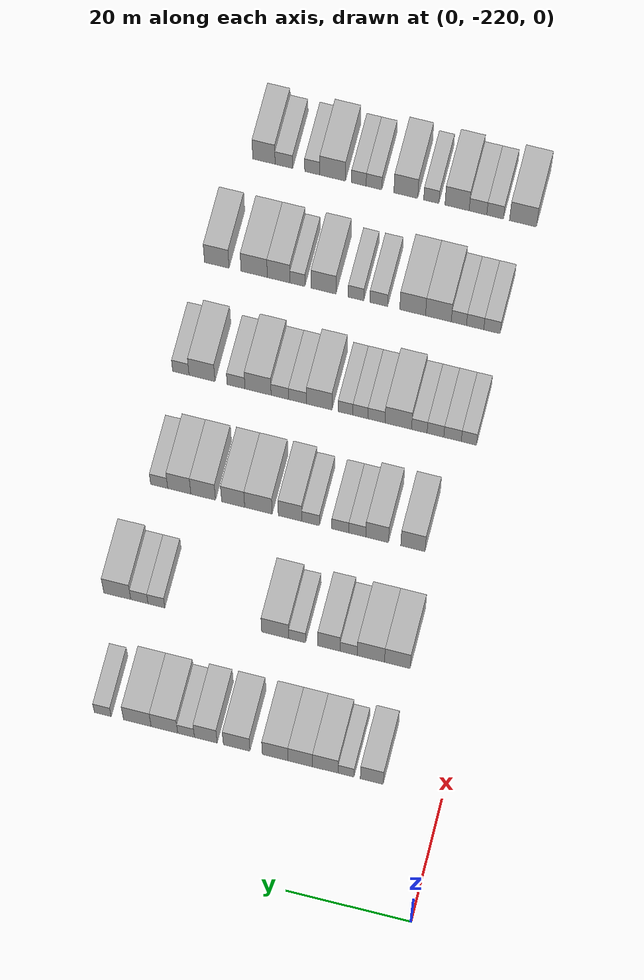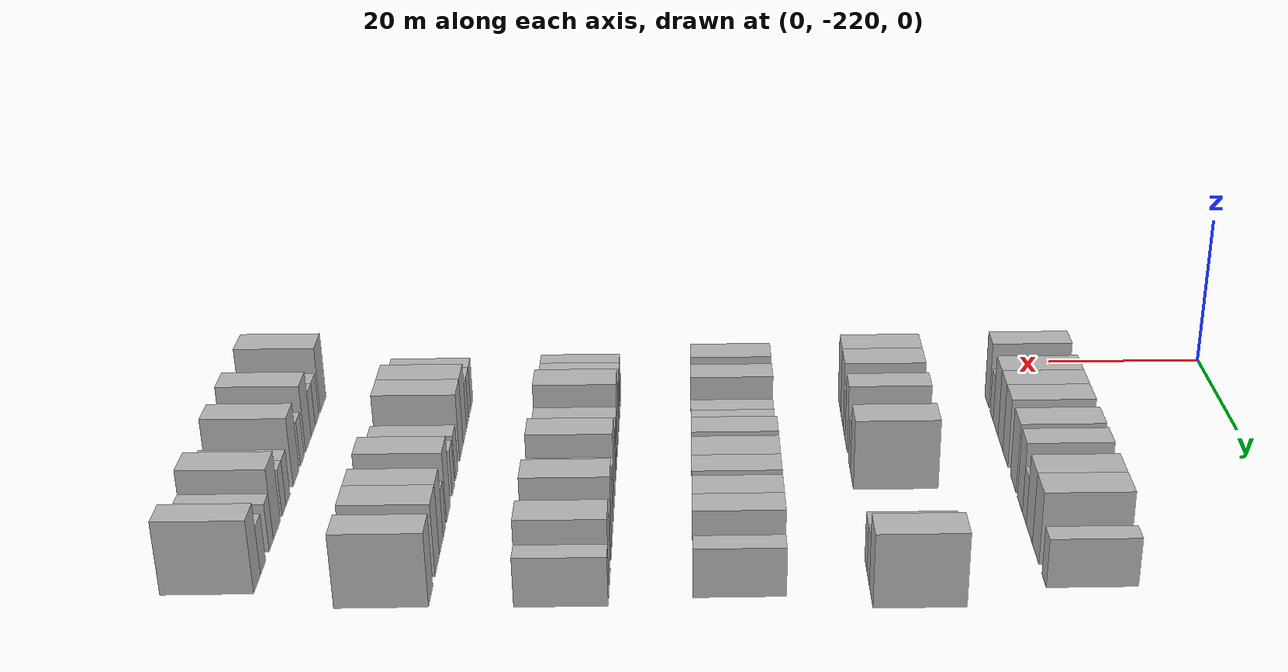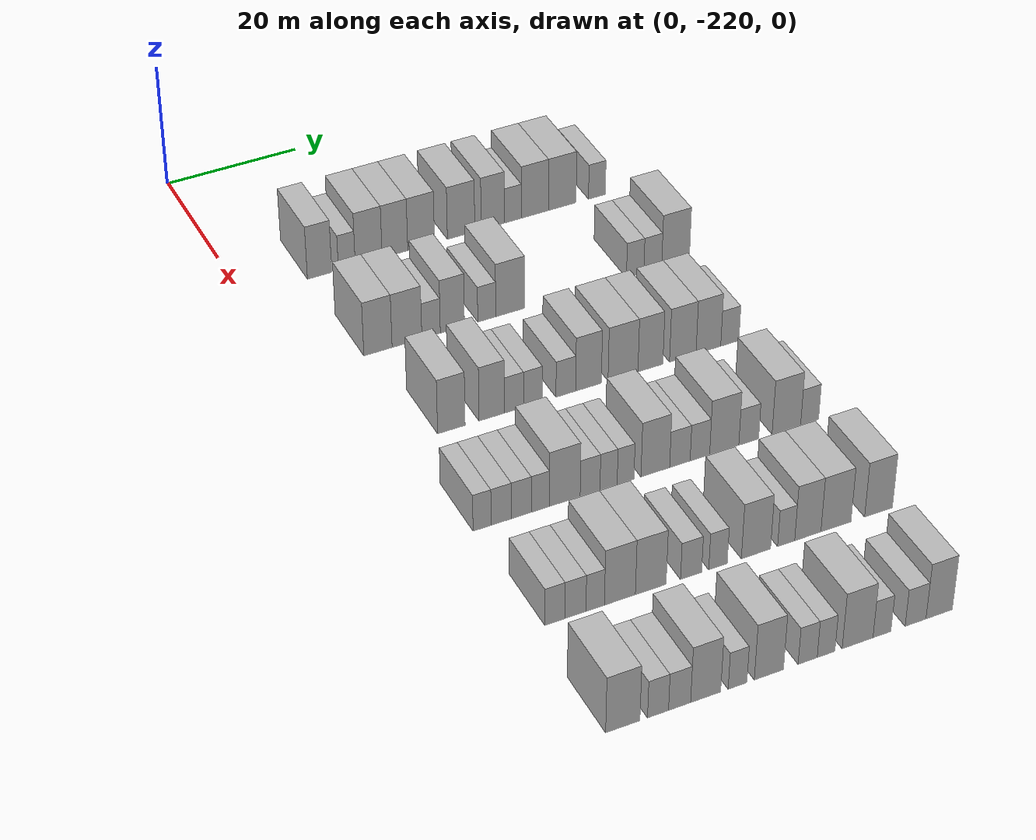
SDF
<sdf version="1.6">
 <world name="default">
  <model name="building_40">
   <static>1</static>
   <pose>25.0000 -208.6132 0 0.000000 0.000000 0.000000</pose>
   <link name="link">
    <pose>0 0 4.50 0 0 0</pose>
    <collision name="collision"><geometry><box><size>10.0000 3.6755 9.0000</size></box></geometry></collision>
    <visual name="visual">
     <cast_shadows>0</cast_shadows>
     <geometry><box><size>10.0000 3.6755 9.0000</size></box></geometry>
     <material>
      <script>
       <uri>model://HANNAS_wall/materials/scripts</uri>
       <uri>model://HANNAS_wall/materials/textures</uri>
       <name>vrc/HANNAS_wall</name>
      </script>
     </material>
    </visual>
   </link>
  </model>
  <model name="building_41">
   <static>1</static>
   <pose>25.0000 -204.4969 0 0.000000 0.000000 0.000000</pose>
   <link name="link">
    <pose>0 0 3.00 0 0 0</pose>
    <collision name="collision"><geometry><box><size>10.0000 2.5571 6.0000</size></box></geometry></collision>
    <visual name="visual">
     <cast_shadows>0</cast_shadows>
     <geometry><box><size>10.0000 2.5571 6.0000</size></box></geometry>
     <material>
      <script>
       <uri>model://HANNAS_wall/materials/scripts</uri>
       <uri>model://HANNAS_wall/materials/textures</uri>
       <name>vrc/HANNAS_wall</name>
      </script>
     </material>
    </visual>
   </link>
  </model>
  <model name="building_42">
   <static>1</static>
   <pose>25.0000 -201.1637 0 0.000000 0.000000 0.000000</pose>
   <link name="link">
    <pose>0 0 4.50 0 0 0</pose>
    <collision name="collision"><geometry><box><size>10.0000 4.1092 9.0000</size></box></geometry></collision>
    <visual name="visual">
     <cast_shadows>0</cast_shadows>
     <geometry><box><size>10.0000 4.1092 9.0000</size></box></geometry>
     <material>
      <script>
       <uri>model://HANNAS_wall/materials/scripts</uri>
       <uri>model://HANNAS_wall/materials/textures</uri>
       <name>vrc/HANNAS_wall</name>
      </script>
     </material>
    </visual>
   </link>
  </model>
  <model name="building_43">
   <static>1</static>
   <pose>25.0000 -197.1431 0 0.000000 0.000000 0.000000</pose>
   <link name="link">
    <pose>0 0 4.50 0 0 0</pose>
    <collision name="collision"><geometry><box><size>10.0000 3.9319 9.0000</size></box></geometry></collision>
    <visual name="visual">
     <cast_shadows>0</cast_shadows>
     <geometry><box><size>10.0000 3.9319 9.0000</size></box></geometry>
     <material>
      <script>
       <uri>model://HANNAS_wall/materials/scripts</uri>
       <uri>model://HANNAS_wall/materials/textures</uri>
       <name>vrc/HANNAS_wall</name>
      </script>
     </material>
    </visual>
   </link>
  </model>
  <model name="building_44">
   <static>1</static>
   <pose>25.0000 -193.1089 0 0.000000 0.000000 0.000000</pose>
   <link name="link">
    <pose>0 0 4.50 0 0 0</pose>
    <collision name="collision"><geometry><box><size>10.0000 4.1365 9.0000</size></box></geometry></collision>
    <visual name="visual">
     <cast_shadows>0</cast_shadows>
     <geometry><box><size>10.0000 4.1365 9.0000</size></box></geometry>
     <material>
      <script>
       <uri>model://HANNAS_wall/materials/scripts</uri>
       <uri>model://HANNAS_wall/materials/textures</uri>
       <name>vrc/HANNAS_wall</name>
      </script>
     </material>
    </visual>
   </link>
  </model>
  <model name="building_45">
   <static>1</static>
   <pose>25.0000 -186.9005 0 0.000000 0.000000 0.000000</pose>
   <link name="link">
    <pose>0 0 4.50 0 0 0</pose>
    <collision name="collision"><geometry><box><size>10.0000 4.2803 9.0000</size></box></geometry></collision>
    <visual name="visual">
     <cast_shadows>0</cast_shadows>
     <geometry><box><size>10.0000 4.2803 9.0000</size></box></geometry>
     <material>
      <script>
       <uri>model://HANNAS_wall/materials/scripts</uri>
       <uri>model://HANNAS_wall/materials/textures</uri>
       <name>vrc/HANNAS_wall</name>
      </script>
     </material>
    </visual>
   </link>
  </model>
  <model name="building_46">
   <static>1</static>
   <pose>25.0000 -181.9274 0 0.000000 0.000000 0.000000</pose>
   <link name="link">
    <pose>0 0 4.50 0 0 0</pose>
    <collision name="collision"><geometry><box><size>10.0000 3.6659 9.0000</size></box></geometry></collision>
    <visual name="visual">
     <cast_shadows>0</cast_shadows>
     <geometry><box><size>10.0000 3.6659 9.0000</size></box></geometry>
     <material>
      <script>
       <uri>model://HANNAS_wall/materials/scripts</uri>
       <uri>model://HANNAS_wall/materials/textures</uri>
       <name>vrc/HANNAS_wall</name>
      </script>
     </material>
    </visual>
   </link>
  </model>
  <model name="building_47">
   <static>1</static>
   <pose>25.0000 -178.7466 0 0.000000 0.000000 0.000000</pose>
   <link name="link">
    <pose>0 0 3.00 0 0 0</pose>
    <collision name="collision"><geometry><box><size>10.0000 2.6958 6.0000</size></box></geometry></collision>
    <visual name="visual">
     <cast_shadows>0</cast_shadows>
     <geometry><box><size>10.0000 2.6958 6.0000</size></box></geometry>
     <material>
      <script>
       <uri>model://HANNAS_wall/materials/scripts</uri>
       <uri>model://HANNAS_wall/materials/textures</uri>
       <name>vrc/HANNAS_wall</name>
      </script>
     </material>
    </visual>
   </link>
  </model>
  <model name="building_48">
   <static>1</static>
   <pose>25.0000 -175.2528 0 0.000000 0.000000 0.000000</pose>
   <link name="link">
    <pose>0 0 4.50 0 0 0</pose>
    <collision name="collision"><geometry><box><size>10.0000 4.2917 9.0000</size></box></geometry></collision>
    <visual name="visual">
     <cast_shadows>0</cast_shadows>
     <geometry><box><size>10.0000 4.2917 9.0000</size></box></geometry>
     <material>
      <script>
       <uri>model://HANNAS_wall/materials/scripts</uri>
       <uri>model://HANNAS_wall/materials/textures</uri>
       <name>vrc/HANNAS_wall</name>
      </script>
     </material>
    </visual>
   </link>
  </model>
  <model name="building_49">
   <static>1</static>
   <pose>25.0000 -170.8839 0 0.000000 0.000000 0.000000</pose>
   <link name="link">
    <pose>0 0 4.50 0 0 0</pose>
    <collision name="collision"><geometry><box><size>10.0000 4.4460 9.0000</size></box></geometry></collision>
    <visual name="visual">
     <cast_shadows>0</cast_shadows>
     <geometry><box><size>10.0000 4.4460 9.0000</size></box></geometry>
     <material>
      <script>
       <uri>model://HANNAS_wall/materials/scripts</uri>
       <uri>model://HANNAS_wall/materials/textures</uri>
       <name>vrc/HANNAS_wall</name>
      </script>
     </material>
    </visual>
   </link>
  </model>
  <model name="building_50">
   <static>1</static>
   <pose>25.0000 -165.2968 0 0.000000 0.000000 0.000000</pose>
   <link name="link">
    <pose>0 0 3.00 0 0 0</pose>
    <collision name="collision"><geometry><box><size>10.0000 2.7283 6.0000</size></box></geometry></collision>
    <visual name="visual">
     <cast_shadows>0</cast_shadows>
     <geometry><box><size>10.0000 2.7283 6.0000</size></box></geometry>
     <material>
      <script>
       <uri>model://HANNAS_wall/materials/scripts</uri>
       <uri>model://HANNAS_wall/materials/textures</uri>
       <name>vrc/HANNAS_wall</name>
      </script>
     </material>
    </visual>
   </link>
  </model>
  <model name="building_210">
   <static>1</static>
   <pose>44.0000 -207.9708 0 0.000000 0.000000 0.000000</pose>
   <link name="link">
    <pose>0 0 4.50 0 0 0</pose>
    <collision name="collision"><geometry><box><size>10.0000 4.1516 9.0000</size></box></geometry></collision>
    <visual name="visual">
     <cast_shadows>0</cast_shadows>
     <geometry><box><size>10.0000 4.1516 9.0000</size></box></geometry>
     <material>
      <script>
       <uri>model://HANNAS_wall/materials/scripts</uri>
       <uri>model://HANNAS_wall/materials/textures</uri>
       <name>vrc/HANNAS_wall</name>
      </script>
     </material>
    </visual>
   </link>
  </model>
  <model name="building_211">
   <static>1</static>
   <pose>44.0000 -203.6932 0 0.000000 0.000000 0.000000</pose>
   <link name="link">
    <pose>0 0 4.50 0 0 0</pose>
    <collision name="collision"><geometry><box><size>10.0000 4.4034 9.0000</size></box></geometry></collision>
    <visual name="visual">
     <cast_shadows>0</cast_shadows>
     <geometry><box><size>10.0000 4.4034 9.0000</size></box></geometry>
     <material>
      <script>
       <uri>model://HANNAS_wall/materials/scripts</uri>
       <uri>model://HANNAS_wall/materials/textures</uri>
       <name>vrc/HANNAS_wall</name>
      </script>
     </material>
    </visual>
   </link>
  </model>
  <model name="building_212">
   <static>1</static>
   <pose>44.0000 -200.1159 0 0.000000 0.000000 0.000000</pose>
   <link name="link">
    <pose>0 0 3.00 0 0 0</pose>
    <collision name="collision"><geometry><box><size>10.0000 2.7513 6.0000</size></box></geometry></collision>
    <visual name="visual">
     <cast_shadows>0</cast_shadows>
     <geometry><box><size>10.0000 2.7513 6.0000</size></box></geometry>
     <material>
      <script>
       <uri>model://HANNAS_wall/materials/scripts</uri>
       <uri>model://HANNAS_wall/materials/textures</uri>
       <name>vrc/HANNAS_wall</name>
      </script>
     </material>
    </visual>
   </link>
  </model>
  <model name="building_213">
   <static>1</static>
   <pose>44.0000 -196.9334 0 0.000000 0.000000 0.000000</pose>
   <link name="link">
    <pose>0 0 4.50 0 0 0</pose>
    <collision name="collision"><geometry><box><size>10.0000 3.6137 9.0000</size></box></geometry></collision>
    <visual name="visual">
     <cast_shadows>0</cast_shadows>
     <geometry><box><size>10.0000 3.6137 9.0000</size></box></geometry>
     <material>
      <script>
       <uri>model://HANNAS_wall/materials/scripts</uri>
       <uri>model://HANNAS_wall/materials/textures</uri>
       <name>vrc/HANNAS_wall</name>
      </script>
     </material>
    </visual>
   </link>
  </model>
  <model name="building_214">
   <static>1</static>
   <pose>44.0000 -191.7709 0 0.000000 0.000000 0.000000</pose>
   <link name="link">
    <pose>0 0 3.00 0 0 0</pose>
    <collision name="collision"><geometry><box><size>10.0000 2.7115 6.0000</size></box></geometry></collision>
    <visual name="visual">
     <cast_shadows>0</cast_shadows>
     <geometry><box><size>10.0000 2.7115 6.0000</size></box></geometry>
     <material>
      <script>
       <uri>model://HANNAS_wall/materials/scripts</uri>
       <uri>model://HANNAS_wall/materials/textures</uri>
       <name>vrc/HANNAS_wall</name>
      </script>
     </material>
    </visual>
   </link>
  </model>
  <model name="building_215">
   <static>1</static>
   <pose>44.0000 -188.2164 0 0.000000 0.000000 0.000000</pose>
   <link name="link">
    <pose>0 0 4.50 0 0 0</pose>
    <collision name="collision"><geometry><box><size>10.0000 4.3975 9.0000</size></box></geometry></collision>
    <visual name="visual">
     <cast_shadows>0</cast_shadows>
     <geometry><box><size>10.0000 4.3975 9.0000</size></box></geometry>
     <material>
      <script>
       <uri>model://HANNAS_wall/materials/scripts</uri>
       <uri>model://HANNAS_wall/materials/textures</uri>
       <name>vrc/HANNAS_wall</name>
      </script>
     </material>
    </visual>
   </link>
  </model>
  <model name="building_216">
   <static>1</static>
   <pose>44.0000 -168.9164 0 0.000000 0.000000 0.000000</pose>
   <link name="link">
    <pose>0 0 3.00 0 0 0</pose>
    <collision name="collision"><geometry><box><size>10.0000 2.7342 6.0000</size></box></geometry></collision>
    <visual name="visual">
     <cast_shadows>0</cast_shadows>
     <geometry><box><size>10.0000 2.7342 6.0000</size></box></geometry>
     <material>
      <script>
       <uri>model://HANNAS_wall/materials/scripts</uri>
       <uri>model://HANNAS_wall/materials/textures</uri>
       <name>vrc/HANNAS_wall</name>
      </script>
     </material>
    </visual>
   </link>
  </model>
  <model name="building_217">
   <static>1</static>
   <pose>44.0000 -166.1420 0 0.000000 0.000000 0.000000</pose>
   <link name="link">
    <pose>0 0 3.00 0 0 0</pose>
    <collision name="collision"><geometry><box><size>10.0000 2.8147 6.0000</size></box></geometry></collision>
    <visual name="visual">
     <cast_shadows>0</cast_shadows>
     <geometry><box><size>10.0000 2.8147 6.0000</size></box></geometry>
     <material>
      <script>
       <uri>model://HANNAS_wall/materials/scripts</uri>
       <uri>model://HANNAS_wall/materials/textures</uri>
       <name>vrc/HANNAS_wall</name>
      </script>
     </material>
    </visual>
   </link>
  </model>
  <model name="building_218">
   <static>1</static>
   <pose>44.0000 -162.5409 0 0.000000 0.000000 0.000000</pose>
   <link name="link">
    <pose>0 0 4.50 0 0 0</pose>
    <collision name="collision"><geometry><box><size>10.0000 4.3874 9.0000</size></box></geometry></collision>
    <visual name="visual">
     <cast_shadows>0</cast_shadows>
     <geometry><box><size>10.0000 4.3874 9.0000</size></box></geometry>
     <material>
      <script>
       <uri>model://HANNAS_wall/materials/scripts</uri>
       <uri>model://HANNAS_wall/materials/textures</uri>
       <name>vrc/HANNAS_wall</name>
      </script>
     </material>
    </visual>
   </link>
  </model>
  <model name="building_383">
   <static>1</static>
   <pose>63.0000 -205.7599 0 0.000000 0.000000 0.000000</pose>
   <link name="link">
    <pose>0 0 4.50 0 0 0</pose>
    <collision name="collision"><geometry><box><size>10.0000 3.9495 9.0000</size></box></geometry></collision>
    <visual name="visual">
     <cast_shadows>0</cast_shadows>
     <geometry><box><size>10.0000 3.9495 9.0000</size></box></geometry>
     <material>
      <script>
       <uri>model://HANNAS_wall/materials/scripts</uri>
       <uri>model://HANNAS_wall/materials/textures</uri>
       <name>vrc/HANNAS_wall</name>
      </script>
     </material>
    </visual>
   </link>
  </model>
  <model name="building_384">
   <static>1</static>
   <pose>63.0000 -199.9432 0 0.000000 0.000000 0.000000</pose>
   <link name="link">
    <pose>0 0 4.50 0 0 0</pose>
    <collision name="collision"><geometry><box><size>10.0000 3.6839 9.0000</size></box></geometry></collision>
    <visual name="visual">
     <cast_shadows>0</cast_shadows>
     <geometry><box><size>10.0000 3.6839 9.0000</size></box></geometry>
     <material>
      <script>
       <uri>model://HANNAS_wall/materials/scripts</uri>
       <uri>model://HANNAS_wall/materials/textures</uri>
       <name>vrc/HANNAS_wall</name>
      </script>
     </material>
    </visual>
   </link>
  </model>
  <model name="building_385">
   <static>1</static>
   <pose>63.0000 -196.7070 0 0.000000 0.000000 0.000000</pose>
   <link name="link">
    <pose>0 0 3.00 0 0 0</pose>
    <collision name="collision"><geometry><box><size>10.0000 2.7885 6.0000</size></box></geometry></collision>
    <visual name="visual">
     <cast_shadows>0</cast_shadows>
     <geometry><box><size>10.0000 2.7885 6.0000</size></box></geometry>
     <material>
      <script>
       <uri>model://HANNAS_wall/materials/scripts</uri>
       <uri>model://HANNAS_wall/materials/textures</uri>
       <name>vrc/HANNAS_wall</name>
      </script>
     </material>
    </visual>
   </link>
  </model>
  <model name="building_386">
   <static>1</static>
   <pose>63.0000 -193.9318 0 0.000000 0.000000 0.000000</pose>
   <link name="link">
    <pose>0 0 3.00 0 0 0</pose>
    <collision name="collision"><geometry><box><size>10.0000 2.7618 6.0000</size></box></geometry></collision>
    <visual name="visual">
     <cast_shadows>0</cast_shadows>
     <geometry><box><size>10.0000 2.7618 6.0000</size></box></geometry>
     <material>
      <script>
       <uri>model://HANNAS_wall/materials/scripts</uri>
       <uri>model://HANNAS_wall/materials/textures</uri>
       <name>vrc/HANNAS_wall</name>
      </script>
     </material>
    </visual>
   </link>
  </model>
  <model name="building_387">
   <static>1</static>
   <pose>63.0000 -189.0959 0 0.000000 0.000000 0.000000</pose>
   <link name="link">
    <pose>0 0 3.00 0 0 0</pose>
    <collision name="collision"><geometry><box><size>10.0000 2.9101 6.0000</size></box></geometry></collision>
    <visual name="visual">
     <cast_shadows>0</cast_shadows>
     <geometry><box><size>10.0000 2.9101 6.0000</size></box></geometry>
     <material>
      <script>
       <uri>model://HANNAS_wall/materials/scripts</uri>
       <uri>model://HANNAS_wall/materials/textures</uri>
       <name>vrc/HANNAS_wall</name>
      </script>
     </material>
    </visual>
   </link>
  </model>
  <model name="building_388">
   <static>1</static>
   <pose>63.0000 -185.7295 0 0.000000 0.000000 0.000000</pose>
   <link name="link">
    <pose>0 0 4.50 0 0 0</pose>
    <collision name="collision"><geometry><box><size>10.0000 3.8228 9.0000</size></box></geometry></collision>
    <visual name="visual">
     <cast_shadows>0</cast_shadows>
     <geometry><box><size>10.0000 3.8228 9.0000</size></box></geometry>
     <material>
      <script>
       <uri>model://HANNAS_wall/materials/scripts</uri>
       <uri>model://HANNAS_wall/materials/textures</uri>
       <name>vrc/HANNAS_wall</name>
      </script>
     </material>
    </visual>
   </link>
  </model>
  <model name="building_389">
   <static>1</static>
   <pose>63.0000 -180.5730 0 0.000000 0.000000 0.000000</pose>
   <link name="link">
    <pose>0 0 4.50 0 0 0</pose>
    <collision name="collision"><geometry><box><size>10.0000 4.4902 9.0000</size></box></geometry></collision>
    <visual name="visual">
     <cast_shadows>0</cast_shadows>
     <geometry><box><size>10.0000 4.4902 9.0000</size></box></geometry>
     <material>
      <script>
       <uri>model://HANNAS_wall/materials/scripts</uri>
       <uri>model://HANNAS_wall/materials/textures</uri>
       <name>vrc/HANNAS_wall</name>
      </script>
     </material>
    </visual>
   </link>
  </model>
  <model name="building_390">
   <static>1</static>
   <pose>63.0000 -176.4427 0 0.000000 0.000000 0.000000</pose>
   <link name="link">
    <pose>0 0 4.50 0 0 0</pose>
    <collision name="collision"><geometry><box><size>10.0000 3.7705 9.0000</size></box></geometry></collision>
    <visual name="visual">
     <cast_shadows>0</cast_shadows>
     <geometry><box><size>10.0000 3.7705 9.0000</size></box></geometry>
     <material>
      <script>
       <uri>model://HANNAS_wall/materials/scripts</uri>
       <uri>model://HANNAS_wall/materials/textures</uri>
       <name>vrc/HANNAS_wall</name>
      </script>
     </material>
    </visual>
   </link>
  </model>
  <model name="building_391">
   <static>1</static>
   <pose>63.0000 -171.5343 0 0.000000 0.000000 0.000000</pose>
   <link name="link">
    <pose>0 0 4.50 0 0 0</pose>
    <collision name="collision"><geometry><box><size>10.0000 4.0462 9.0000</size></box></geometry></collision>
    <visual name="visual">
     <cast_shadows>0</cast_shadows>
     <geometry><box><size>10.0000 4.0462 9.0000</size></box></geometry>
     <material>
      <script>
       <uri>model://HANNAS_wall/materials/scripts</uri>
       <uri>model://HANNAS_wall/materials/textures</uri>
       <name>vrc/HANNAS_wall</name>
      </script>
     </material>
    </visual>
   </link>
  </model>
  <model name="building_392">
   <static>1</static>
   <pose>63.0000 -167.6149 0 0.000000 0.000000 0.000000</pose>
   <link name="link">
    <pose>0 0 4.50 0 0 0</pose>
    <collision name="collision"><geometry><box><size>10.0000 3.7926 9.0000</size></box></geometry></collision>
    <visual name="visual">
     <cast_shadows>0</cast_shadows>
     <geometry><box><size>10.0000 3.7926 9.0000</size></box></geometry>
     <material>
      <script>
       <uri>model://HANNAS_wall/materials/scripts</uri>
       <uri>model://HANNAS_wall/materials/textures</uri>
       <name>vrc/HANNAS_wall</name>
      </script>
     </material>
    </visual>
   </link>
  </model>
  <model name="building_393">
   <static>1</static>
   <pose>63.0000 -164.3172 0 0.000000 0.000000 0.000000</pose>
   <link name="link">
    <pose>0 0 3.00 0 0 0</pose>
    <collision name="collision"><geometry><box><size>10.0000 2.8028 6.0000</size></box></geometry></collision>
    <visual name="visual">
     <cast_shadows>0</cast_shadows>
     <geometry><box><size>10.0000 2.8028 6.0000</size></box></geometry>
     <material>
      <script>
       <uri>model://HANNAS_wall/materials/scripts</uri>
       <uri>model://HANNAS_wall/materials/textures</uri>
       <name>vrc/HANNAS_wall</name>
      </script>
     </material>
    </visual>
   </link>
  </model>
  <model name="building_565">
   <static>1</static>
   <pose>82.0000 -210.1985 0 0.000000 0.000000 0.000000</pose>
   <link name="link">
    <pose>0 0 3.00 0 0 0</pose>
    <collision name="collision"><geometry><box><size>10.0000 2.4964 6.0000</size></box></geometry></collision>
    <visual name="visual">
     <cast_shadows>0</cast_shadows>
     <geometry><box><size>10.0000 2.4964 6.0000</size></box></geometry>
     <material>
      <script>
       <uri>model://HANNAS_wall/materials/scripts</uri>
       <uri>model://HANNAS_wall/materials/textures</uri>
       <name>vrc/HANNAS_wall</name>
      </script>
     </material>
    </visual>
   </link>
  </model>
  <model name="building_566">
   <static>1</static>
   <pose>82.0000 -207.5237 0 0.000000 0.000000 0.000000</pose>
   <link name="link">
    <pose>0 0 3.00 0 0 0</pose>
    <collision name="collision"><geometry><box><size>10.0000 2.8531 6.0000</size></box></geometry></collision>
    <visual name="visual">
     <cast_shadows>0</cast_shadows>
     <geometry><box><size>10.0000 2.8531 6.0000</size></box></geometry>
     <material>
      <script>
       <uri>model://HANNAS_wall/materials/scripts</uri>
       <uri>model://HANNAS_wall/materials/textures</uri>
       <name>vrc/HANNAS_wall</name>
      </script>
     </material>
    </visual>
   </link>
  </model>
  <model name="building_567">
   <static>1</static>
   <pose>82.0000 -204.7233 0 0.000000 0.000000 0.000000</pose>
   <link name="link">
    <pose>0 0 3.00 0 0 0</pose>
    <collision name="collision"><geometry><box><size>10.0000 2.7477 6.0000</size></box></geometry></collision>
    <visual name="visual">
     <cast_shadows>0</cast_shadows>
     <geometry><box><size>10.0000 2.7477 6.0000</size></box></geometry>
     <material>
      <script>
       <uri>model://HANNAS_wall/materials/scripts</uri>
       <uri>model://HANNAS_wall/materials/textures</uri>
       <name>vrc/HANNAS_wall</name>
      </script>
     </material>
    </visual>
   </link>
  </model>
  <model name="building_568">
   <static>1</static>
   <pose>82.0000 -202.0794 0 0.000000 0.000000 0.000000</pose>
   <link name="link">
    <pose>0 0 3.00 0 0 0</pose>
    <collision name="collision"><geometry><box><size>10.0000 2.5401 6.0000</size></box></geometry></collision>
    <visual name="visual">
     <cast_shadows>0</cast_shadows>
     <geometry><box><size>10.0000 2.5401 6.0000</size></box></geometry>
     <material>
      <script>
       <uri>model://HANNAS_wall/materials/scripts</uri>
       <uri>model://HANNAS_wall/materials/textures</uri>
       <name>vrc/HANNAS_wall</name>
      </script>
     </material>
    </visual>
   </link>
  </model>
  <model name="building_569">
   <static>1</static>
   <pose>82.0000 -198.6300 0 0.000000 0.000000 0.000000</pose>
   <link name="link">
    <pose>0 0 4.50 0 0 0</pose>
    <collision name="collision"><geometry><box><size>10.0000 4.3587 9.0000</size></box></geometry></collision>
    <visual name="visual">
     <cast_shadows>0</cast_shadows>
     <geometry><box><size>10.0000 4.3587 9.0000</size></box></geometry>
     <material>
      <script>
       <uri>model://HANNAS_wall/materials/scripts</uri>
       <uri>model://HANNAS_wall/materials/textures</uri>
       <name>vrc/HANNAS_wall</name>
      </script>
     </material>
    </visual>
   </link>
  </model>
  <model name="building_570">
   <static>1</static>
   <pose>82.0000 -195.0383 0 0.000000 0.000000 0.000000</pose>
   <link name="link">
    <pose>0 0 3.00 0 0 0</pose>
    <collision name="collision"><geometry><box><size>10.0000 2.8247 6.0000</size></box></geometry></collision>
    <visual name="visual">
     <cast_shadows>0</cast_shadows>
     <geometry><box><size>10.0000 2.8247 6.0000</size></box></geometry>
     <material>
      <script>
       <uri>model://HANNAS_wall/materials/scripts</uri>
       <uri>model://HANNAS_wall/materials/textures</uri>
       <name>vrc/HANNAS_wall</name>
      </script>
     </material>
    </visual>
   </link>
  </model>
  <model name="building_571">
   <static>1</static>
   <pose>82.0000 -192.3997 0 0.000000 0.000000 0.000000</pose>
   <link name="link">
    <pose>0 0 3.00 0 0 0</pose>
    <collision name="collision"><geometry><box><size>10.0000 2.4526 6.0000</size></box></geometry></collision>
    <visual name="visual">
     <cast_shadows>0</cast_shadows>
     <geometry><box><size>10.0000 2.4526 6.0000</size></box></geometry>
     <material>
      <script>
       <uri>model://HANNAS_wall/materials/scripts</uri>
       <uri>model://HANNAS_wall/materials/textures</uri>
       <name>vrc/HANNAS_wall</name>
      </script>
     </material>
    </visual>
   </link>
  </model>
  <model name="building_572">
   <static>1</static>
   <pose>82.0000 -189.9623 0 0.000000 0.000000 0.000000</pose>
   <link name="link">
    <pose>0 0 3.00 0 0 0</pose>
    <collision name="collision"><geometry><box><size>10.0000 2.4221 6.0000</size></box></geometry></collision>
    <visual name="visual">
     <cast_shadows>0</cast_shadows>
     <geometry><box><size>10.0000 2.4221 6.0000</size></box></geometry>
     <material>
      <script>
       <uri>model://HANNAS_wall/materials/scripts</uri>
       <uri>model://HANNAS_wall/materials/textures</uri>
       <name>vrc/HANNAS_wall</name>
      </script>
     </material>
    </visual>
   </link>
  </model>
  <model name="building_573">
   <static>1</static>
   <pose>82.0000 -185.6718 0 0.000000 0.000000 0.000000</pose>
   <link name="link">
    <pose>0 0 4.50 0 0 0</pose>
    <collision name="collision"><geometry><box><size>10.0000 4.1590 9.0000</size></box></geometry></collision>
    <visual name="visual">
     <cast_shadows>0</cast_shadows>
     <geometry><box><size>10.0000 4.1590 9.0000</size></box></geometry>
     <material>
      <script>
       <uri>model://HANNAS_wall/materials/scripts</uri>
       <uri>model://HANNAS_wall/materials/textures</uri>
       <name>vrc/HANNAS_wall</name>
      </script>
     </material>
    </visual>
   </link>
  </model>
  <model name="building_574">
   <static>1</static>
   <pose>82.0000 -182.0992 0 0.000000 0.000000 0.000000</pose>
   <link name="link">
    <pose>0 0 3.00 0 0 0</pose>
    <collision name="collision"><geometry><box><size>10.0000 2.9862 6.0000</size></box></geometry></collision>
    <visual name="visual">
     <cast_shadows>0</cast_shadows>
     <geometry><box><size>10.0000 2.9862 6.0000</size></box></geometry>
     <material>
      <script>
       <uri>model://HANNAS_wall/materials/scripts</uri>
       <uri>model://HANNAS_wall/materials/textures</uri>
       <name>vrc/HANNAS_wall</name>
      </script>
     </material>
    </visual>
   </link>
  </model>
  <model name="building_575">
   <static>1</static>
   <pose>82.0000 -179.1759 0 0.000000 0.000000 0.000000</pose>
   <link name="link">
    <pose>0 0 3.00 0 0 0</pose>
    <collision name="collision"><geometry><box><size>10.0000 2.8604 6.0000</size></box></geometry></collision>
    <visual name="visual">
     <cast_shadows>0</cast_shadows>
     <geometry><box><size>10.0000 2.8604 6.0000</size></box></geometry>
     <material>
      <script>
       <uri>model://HANNAS_wall/materials/scripts</uri>
       <uri>model://HANNAS_wall/materials/textures</uri>
       <name>vrc/HANNAS_wall</name>
      </script>
     </material>
    </visual>
   </link>
  </model>
  <model name="building_576">
   <static>1</static>
   <pose>82.0000 -175.5945 0 0.000000 0.000000 0.000000</pose>
   <link name="link">
    <pose>0 0 4.50 0 0 0</pose>
    <collision name="collision"><geometry><box><size>10.0000 4.3023 9.0000</size></box></geometry></collision>
    <visual name="visual">
     <cast_shadows>0</cast_shadows>
     <geometry><box><size>10.0000 4.3023 9.0000</size></box></geometry>
     <material>
      <script>
       <uri>model://HANNAS_wall/materials/scripts</uri>
       <uri>model://HANNAS_wall/materials/textures</uri>
       <name>vrc/HANNAS_wall</name>
      </script>
     </material>
    </visual>
   </link>
  </model>
  <model name="building_577">
   <static>1</static>
   <pose>82.0000 -171.9695 0 0.000000 0.000000 0.000000</pose>
   <link name="link">
    <pose>0 0 3.00 0 0 0</pose>
    <collision name="collision"><geometry><box><size>10.0000 2.9477 6.0000</size></box></geometry></collision>
    <visual name="visual">
     <cast_shadows>0</cast_shadows>
     <geometry><box><size>10.0000 2.9477 6.0000</size></box></geometry>
     <material>
      <script>
       <uri>model://HANNAS_wall/materials/scripts</uri>
       <uri>model://HANNAS_wall/materials/textures</uri>
       <name>vrc/HANNAS_wall</name>
      </script>
     </material>
    </visual>
   </link>
  </model>
  <model name="building_578">
   <static>1</static>
   <pose>82.0000 -166.3547 0 0.000000 0.000000 0.000000</pose>
   <link name="link">
    <pose>0 0 4.50 0 0 0</pose>
    <collision name="collision"><geometry><box><size>10.0000 4.2818 9.0000</size></box></geometry></collision>
    <visual name="visual">
     <cast_shadows>0</cast_shadows>
     <geometry><box><size>10.0000 4.2818 9.0000</size></box></geometry>
     <material>
      <script>
       <uri>model://HANNAS_wall/materials/scripts</uri>
       <uri>model://HANNAS_wall/materials/textures</uri>
       <name>vrc/HANNAS_wall</name>
      </script>
     </material>
    </visual>
   </link>
  </model>
  <model name="building_579">
   <static>1</static>
   <pose>82.0000 -162.8608 0 0.000000 0.000000 0.000000</pose>
   <link name="link">
    <pose>0 0 3.00 0 0 0</pose>
    <collision name="collision"><geometry><box><size>10.0000 2.7061 6.0000</size></box></geometry></collision>
    <visual name="visual">
     <cast_shadows>0</cast_shadows>
     <geometry><box><size>10.0000 2.7061 6.0000</size></box></geometry>
     <material>
      <script>
       <uri>model://HANNAS_wall/materials/scripts</uri>
       <uri>model://HANNAS_wall/materials/textures</uri>
       <name>vrc/HANNAS_wall</name>
      </script>
     </material>
    </visual>
   </link>
  </model>
  <model name="building_752">
   <static>1</static>
   <pose>101.0000 -209.3504 0 0.000000 0.000000 0.000000</pose>
   <link name="link">
    <pose>0 0 3.00 0 0 0</pose>
    <collision name="collision"><geometry><box><size>10.0000 2.7116 6.0000</size></box></geometry></collision>
    <visual name="visual">
     <cast_shadows>0</cast_shadows>
     <geometry><box><size>10.0000 2.7116 6.0000</size></box></geometry>
     <material>
      <script>
       <uri>model://HANNAS_wall/materials/scripts</uri>
       <uri>model://HANNAS_wall/materials/textures</uri>
       <name>vrc/HANNAS_wall</name>
      </script>
     </material>
    </visual>
   </link>
  </model>
  <model name="building_753">
   <static>1</static>
   <pose>101.0000 -206.5690 0 0.000000 0.000000 0.000000</pose>
   <link name="link">
    <pose>0 0 3.00 0 0 0</pose>
    <collision name="collision"><geometry><box><size>10.0000 2.8513 6.0000</size></box></geometry></collision>
    <visual name="visual">
     <cast_shadows>0</cast_shadows>
     <geometry><box><size>10.0000 2.8513 6.0000</size></box></geometry>
     <material>
      <script>
       <uri>model://HANNAS_wall/materials/scripts</uri>
       <uri>model://HANNAS_wall/materials/textures</uri>
       <name>vrc/HANNAS_wall</name>
      </script>
     </material>
    </visual>
   </link>
  </model>
  <model name="building_754">
   <static>1</static>
   <pose>101.0000 -203.8902 0 0.000000 0.000000 0.000000</pose>
   <link name="link">
    <pose>0 0 3.00 0 0 0</pose>
    <collision name="collision"><geometry><box><size>10.0000 2.5061 6.0000</size></box></geometry></collision>
    <visual name="visual">
     <cast_shadows>0</cast_shadows>
     <geometry><box><size>10.0000 2.5061 6.0000</size></box></geometry>
     <material>
      <script>
       <uri>model://HANNAS_wall/materials/scripts</uri>
       <uri>model://HANNAS_wall/materials/textures</uri>
       <name>vrc/HANNAS_wall</name>
      </script>
     </material>
    </visual>
   </link>
  </model>
  <model name="building_755">
   <static>1</static>
   <pose>101.0000 -200.5136 0 0.000000 0.000000 0.000000</pose>
   <link name="link">
    <pose>0 0 4.50 0 0 0</pose>
    <collision name="collision"><geometry><box><size>10.0000 4.2471 9.0000</size></box></geometry></collision>
    <visual name="visual">
     <cast_shadows>0</cast_shadows>
     <geometry><box><size>10.0000 4.2471 9.0000</size></box></geometry>
     <material>
      <script>
       <uri>model://HANNAS_wall/materials/scripts</uri>
       <uri>model://HANNAS_wall/materials/textures</uri>
       <name>vrc/HANNAS_wall</name>
      </script>
     </material>
    </visual>
   </link>
  </model>
  <model name="building_756">
   <static>1</static>
   <pose>101.0000 -196.2658 0 0.000000 0.000000 0.000000</pose>
   <link name="link">
    <pose>0 0 4.50 0 0 0</pose>
    <collision name="collision"><geometry><box><size>10.0000 4.2486 9.0000</size></box></geometry></collision>
    <visual name="visual">
     <cast_shadows>0</cast_shadows>
     <geometry><box><size>10.0000 4.2486 9.0000</size></box></geometry>
     <material>
      <script>
       <uri>model://HANNAS_wall/materials/scripts</uri>
       <uri>model://HANNAS_wall/materials/textures</uri>
       <name>vrc/HANNAS_wall</name>
      </script>
     </material>
    </visual>
   </link>
  </model>
  <model name="building_757">
   <static>1</static>
   <pose>101.0000 -190.6690 0 0.000000 0.000000 0.000000</pose>
   <link name="link">
    <pose>0 0 3.00 0 0 0</pose>
    <collision name="collision"><geometry><box><size>10.0000 2.9450 6.0000</size></box></geometry></collision>
    <visual name="visual">
     <cast_shadows>0</cast_shadows>
     <geometry><box><size>10.0000 2.9450 6.0000</size></box></geometry>
     <material>
      <script>
       <uri>model://HANNAS_wall/materials/scripts</uri>
       <uri>model://HANNAS_wall/materials/textures</uri>
       <name>vrc/HANNAS_wall</name>
      </script>
     </material>
    </visual>
   </link>
  </model>
  <model name="building_758">
   <static>1</static>
   <pose>101.0000 -186.8982 0 0.000000 0.000000 0.000000</pose>
   <link name="link">
    <pose>0 0 3.00 0 0 0</pose>
    <collision name="collision"><geometry><box><size>10.0000 2.5965 6.0000</size></box></geometry></collision>
    <visual name="visual">
     <cast_shadows>0</cast_shadows>
     <geometry><box><size>10.0000 2.5965 6.0000</size></box></geometry>
     <material>
      <script>
       <uri>model://HANNAS_wall/materials/scripts</uri>
       <uri>model://HANNAS_wall/materials/textures</uri>
       <name>vrc/HANNAS_wall</name>
      </script>
     </material>
    </visual>
   </link>
  </model>
  <model name="building_759">
   <static>1</static>
   <pose>101.0000 -181.5239 0 0.000000 0.000000 0.000000</pose>
   <link name="link">
    <pose>0 0 4.50 0 0 0</pose>
    <collision name="collision"><geometry><box><size>10.0000 4.1521 9.0000</size></box></geometry></collision>
    <visual name="visual">
     <cast_shadows>0</cast_shadows>
     <geometry><box><size>10.0000 4.1521 9.0000</size></box></geometry>
     <material>
      <script>
       <uri>model://HANNAS_wall/materials/scripts</uri>
       <uri>model://HANNAS_wall/materials/textures</uri>
       <name>vrc/HANNAS_wall</name>
      </script>
     </material>
    </visual>
   </link>
  </model>
  <model name="building_760">
   <static>1</static>
   <pose>101.0000 -177.2218 0 0.000000 0.000000 0.000000</pose>
   <link name="link">
    <pose>0 0 3.00 0 0 0</pose>
    <collision name="collision"><geometry><box><size>10.0000 2.4522 6.0000</size></box></geometry></collision>
    <visual name="visual">
     <cast_shadows>0</cast_shadows>
     <geometry><box><size>10.0000 2.4522 6.0000</size></box></geometry>
     <material>
      <script>
       <uri>model://HANNAS_wall/materials/scripts</uri>
       <uri>model://HANNAS_wall/materials/textures</uri>
       <name>vrc/HANNAS_wall</name>
      </script>
     </material>
    </visual>
   </link>
  </model>
  <model name="building_761">
   <static>1</static>
   <pose>101.0000 -174.1099 0 0.000000 0.000000 0.000000</pose>
   <link name="link">
    <pose>0 0 4.50 0 0 0</pose>
    <collision name="collision"><geometry><box><size>10.0000 3.7716 9.0000</size></box></geometry></collision>
    <visual name="visual">
     <cast_shadows>0</cast_shadows>
     <geometry><box><size>10.0000 3.7716 9.0000</size></box></geometry>
     <material>
      <script>
       <uri>model://HANNAS_wall/materials/scripts</uri>
       <uri>model://HANNAS_wall/materials/textures</uri>
       <name>vrc/HANNAS_wall</name>
      </script>
     </material>
    </visual>
   </link>
  </model>
  <model name="building_762">
   <static>1</static>
   <pose>101.0000 -170.0424 0 0.000000 0.000000 0.000000</pose>
   <link name="link">
    <pose>0 0 4.50 0 0 0</pose>
    <collision name="collision"><geometry><box><size>10.0000 4.3633 9.0000</size></box></geometry></collision>
    <visual name="visual">
     <cast_shadows>0</cast_shadows>
     <geometry><box><size>10.0000 4.3633 9.0000</size></box></geometry>
     <material>
      <script>
       <uri>model://HANNAS_wall/materials/scripts</uri>
       <uri>model://HANNAS_wall/materials/textures</uri>
       <name>vrc/HANNAS_wall</name>
      </script>
     </material>
    </visual>
   </link>
  </model>
  <model name="building_763">
   <static>1</static>
   <pose>101.0000 -163.8246 0 0.000000 0.000000 0.000000</pose>
   <link name="link">
    <pose>0 0 4.50 0 0 0</pose>
    <collision name="collision"><geometry><box><size>10.0000 4.0723 9.0000</size></box></geometry></collision>
    <visual name="visual">
     <cast_shadows>0</cast_shadows>
     <geometry><box><size>10.0000 4.0723 9.0000</size></box></geometry>
     <material>
      <script>
       <uri>model://HANNAS_wall/materials/scripts</uri>
       <uri>model://HANNAS_wall/materials/textures</uri>
       <name>vrc/HANNAS_wall</name>
      </script>
     </material>
    </visual>
   </link>
  </model>
  <model name="building_929">
   <static>1</static>
   <pose>120.0000 -209.8695 0 0.000000 0.000000 0.000000</pose>
   <link name="link">
    <pose>0 0 4.50 0 0 0</pose>
    <collision name="collision"><geometry><box><size>10.0000 4.4781 9.0000</size></box></geometry></collision>
    <visual name="visual">
     <cast_shadows>0</cast_shadows>
     <geometry><box><size>10.0000 4.4781 9.0000</size></box></geometry>
     <material>
      <script>
       <uri>model://HANNAS_wall/materials/scripts</uri>
       <uri>model://HANNAS_wall/materials/textures</uri>
       <name>vrc/HANNAS_wall</name>
      </script>
     </material>
    </visual>
   </link>
  </model>
  <model name="building_930">
   <static>1</static>
   <pose>120.0000 -205.2440 0 0.000000 0.000000 0.000000</pose>
   <link name="link">
    <pose>0 0 3.00 0 0 0</pose>
    <collision name="collision"><geometry><box><size>10.0000 2.7728 6.0000</size></box></geometry></collision>
    <visual name="visual">
     <cast_shadows>0</cast_shadows>
     <geometry><box><size>10.0000 2.7728 6.0000</size></box></geometry>
     <material>
      <script>
       <uri>model://HANNAS_wall/materials/scripts</uri>
       <uri>model://HANNAS_wall/materials/textures</uri>
       <name>vrc/HANNAS_wall</name>
      </script>
     </material>
    </visual>
   </link>
  </model>
  <model name="building_931">
   <static>1</static>
   <pose>120.0000 -202.3932 0 0.000000 0.000000 0.000000</pose>
   <link name="link">
    <pose>0 0 3.00 0 0 0</pose>
    <collision name="collision"><geometry><box><size>10.0000 2.9288 6.0000</size></box></geometry></collision>
    <visual name="visual">
     <cast_shadows>0</cast_shadows>
     <geometry><box><size>10.0000 2.9288 6.0000</size></box></geometry>
     <material>
      <script>
       <uri>model://HANNAS_wall/materials/scripts</uri>
       <uri>model://HANNAS_wall/materials/textures</uri>
       <name>vrc/HANNAS_wall</name>
      </script>
     </material>
    </visual>
   </link>
  </model>
  <model name="building_932">
   <static>1</static>
   <pose>120.0000 -198.9209 0 0.000000 0.000000 0.000000</pose>
   <link name="link">
    <pose>0 0 4.50 0 0 0</pose>
    <collision name="collision"><geometry><box><size>10.0000 4.0157 9.0000</size></box></geometry></collision>
    <visual name="visual">
     <cast_shadows>0</cast_shadows>
     <geometry><box><size>10.0000 4.0157 9.0000</size></box></geometry>
     <material>
      <script>
       <uri>model://HANNAS_wall/materials/scripts</uri>
       <uri>model://HANNAS_wall/materials/textures</uri>
       <name>vrc/HANNAS_wall</name>
      </script>
     </material>
    </visual>
   </link>
  </model>
  <model name="building_933">
   <static>1</static>
   <pose>120.0000 -194.6485 0 0.000000 0.000000 0.000000</pose>
   <link name="link">
    <pose>0 0 3.00 0 0 0</pose>
    <collision name="collision"><geometry><box><size>10.0000 2.5292 6.0000</size></box></geometry></collision>
    <visual name="visual">
     <cast_shadows>0</cast_shadows>
     <geometry><box><size>10.0000 2.5292 6.0000</size></box></geometry>
     <material>
      <script>
       <uri>model://HANNAS_wall/materials/scripts</uri>
       <uri>model://HANNAS_wall/materials/textures</uri>
       <name>vrc/HANNAS_wall</name>
      </script>
     </material>
    </visual>
   </link>
  </model>
  <model name="building_934">
   <static>1</static>
   <pose>120.0000 -190.4035 0 0.000000 0.000000 0.000000</pose>
   <link name="link">
    <pose>0 0 4.50 0 0 0</pose>
    <collision name="collision"><geometry><box><size>10.0000 3.9609 9.0000</size></box></geometry></collision>
    <visual name="visual">
     <cast_shadows>0</cast_shadows>
     <geometry><box><size>10.0000 3.9609 9.0000</size></box></geometry>
     <material>
      <script>
       <uri>model://HANNAS_wall/materials/scripts</uri>
       <uri>model://HANNAS_wall/materials/textures</uri>
       <name>vrc/HANNAS_wall</name>
      </script>
     </material>
    </visual>
   </link>
  </model>
  <model name="building_935">
   <static>1</static>
   <pose>120.0000 -185.1126 0 0.000000 0.000000 0.000000</pose>
   <link name="link">
    <pose>0 0 3.00 0 0 0</pose>
    <collision name="collision"><geometry><box><size>10.0000 2.6208 6.0000</size></box></geometry></collision>
    <visual name="visual">
     <cast_shadows>0</cast_shadows>
     <geometry><box><size>10.0000 2.6208 6.0000</size></box></geometry>
     <material>
      <script>
       <uri>model://HANNAS_wall/materials/scripts</uri>
       <uri>model://HANNAS_wall/materials/textures</uri>
       <name>vrc/HANNAS_wall</name>
      </script>
     </material>
    </visual>
   </link>
  </model>
  <model name="building_936">
   <static>1</static>
   <pose>120.0000 -182.5816 0 0.000000 0.000000 0.000000</pose>
   <link name="link">
    <pose>0 0 3.00 0 0 0</pose>
    <collision name="collision"><geometry><box><size>10.0000 2.4412 6.0000</size></box></geometry></collision>
    <visual name="visual">
     <cast_shadows>0</cast_shadows>
     <geometry><box><size>10.0000 2.4412 6.0000</size></box></geometry>
     <material>
      <script>
       <uri>model://HANNAS_wall/materials/scripts</uri>
       <uri>model://HANNAS_wall/materials/textures</uri>
       <name>vrc/HANNAS_wall</name>
      </script>
     </material>
    </visual>
   </link>
  </model>
  <model name="building_937">
   <static>1</static>
   <pose>120.0000 -178.2160 0 0.000000 0.000000 0.000000</pose>
   <link name="link">
    <pose>0 0 4.50 0 0 0</pose>
    <collision name="collision"><geometry><box><size>10.0000 4.2899 9.0000</size></box></geometry></collision>
    <visual name="visual">
     <cast_shadows>0</cast_shadows>
     <geometry><box><size>10.0000 4.2899 9.0000</size></box></geometry>
     <material>
      <script>
       <uri>model://HANNAS_wall/materials/scripts</uri>
       <uri>model://HANNAS_wall/materials/textures</uri>
       <name>vrc/HANNAS_wall</name>
      </script>
     </material>
    </visual>
   </link>
  </model>
  <model name="building_938">
   <static>1</static>
   <pose>120.0000 -174.8150 0 0.000000 0.000000 0.000000</pose>
   <link name="link">
    <pose>0 0 3.00 0 0 0</pose>
    <collision name="collision"><geometry><box><size>10.0000 2.5123 6.0000</size></box></geometry></collision>
    <visual name="visual">
     <cast_shadows>0</cast_shadows>
     <geometry><box><size>10.0000 2.5123 6.0000</size></box></geometry>
     <material>
      <script>
       <uri>model://HANNAS_wall/materials/scripts</uri>
       <uri>model://HANNAS_wall/materials/textures</uri>
       <name>vrc/HANNAS_wall</name>
      </script>
     </material>
    </visual>
   </link>
  </model>
  <model name="building_939">
   <static>1</static>
   <pose>120.0000 -170.0856 0 0.000000 0.000000 0.000000</pose>
   <link name="link">
    <pose>0 0 3.00 0 0 0</pose>
    <collision name="collision"><geometry><box><size>10.0000 2.9464 6.0000</size></box></geometry></collision>
    <visual name="visual">
     <cast_shadows>0</cast_shadows>
     <geometry><box><size>10.0000 2.9464 6.0000</size></box></geometry>
     <material>
      <script>
       <uri>model://HANNAS_wall/materials/scripts</uri>
       <uri>model://HANNAS_wall/materials/textures</uri>
       <name>vrc/HANNAS_wall</name>
      </script>
     </material>
    </visual>
   </link>
  </model>
  <model name="building_940">
   <static>1</static>
   <pose>120.0000 -166.7444 0 0.000000 0.000000 0.000000</pose>
   <link name="link">
    <pose>0 0 4.50 0 0 0</pose>
    <collision name="collision"><geometry><box><size>10.0000 3.7360 9.0000</size></box></geometry></collision>
    <visual name="visual">
     <cast_shadows>0</cast_shadows>
     <geometry><box><size>10.0000 3.7360 9.0000</size></box></geometry>
     <material>
      <script>
       <uri>model://HANNAS_wall/materials/scripts</uri>
       <uri>model://HANNAS_wall/materials/textures</uri>
       <name>vrc/HANNAS_wall</name>
      </script>
     </material>
    </visual>
   </link>
  </model>
 </world>
</sdf>
